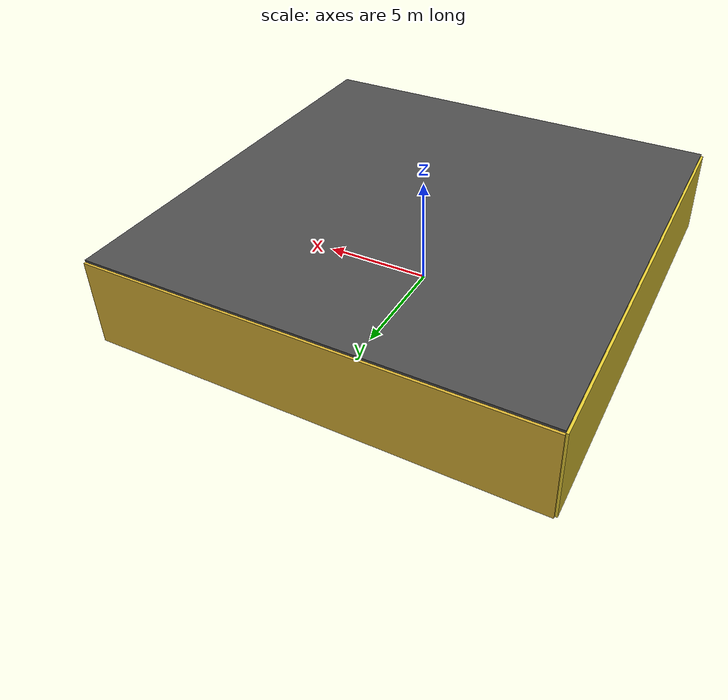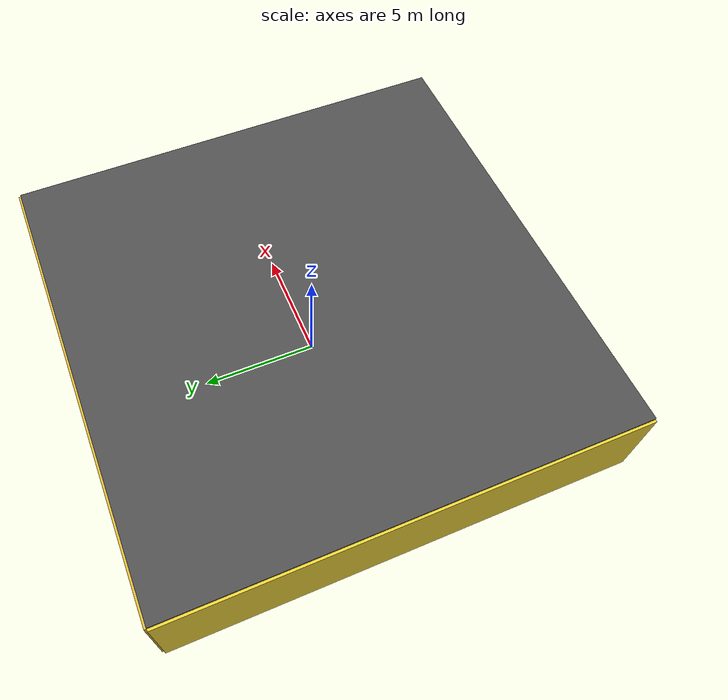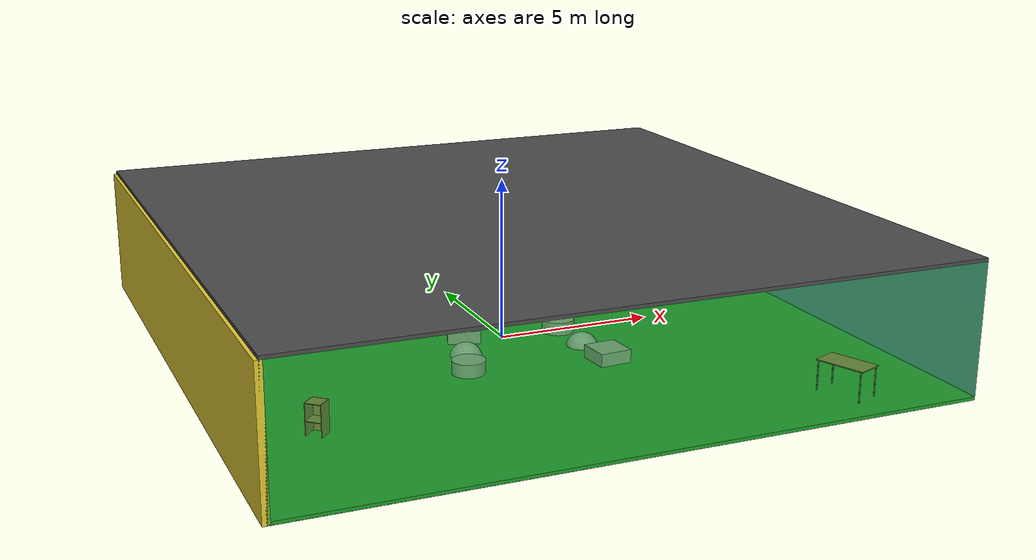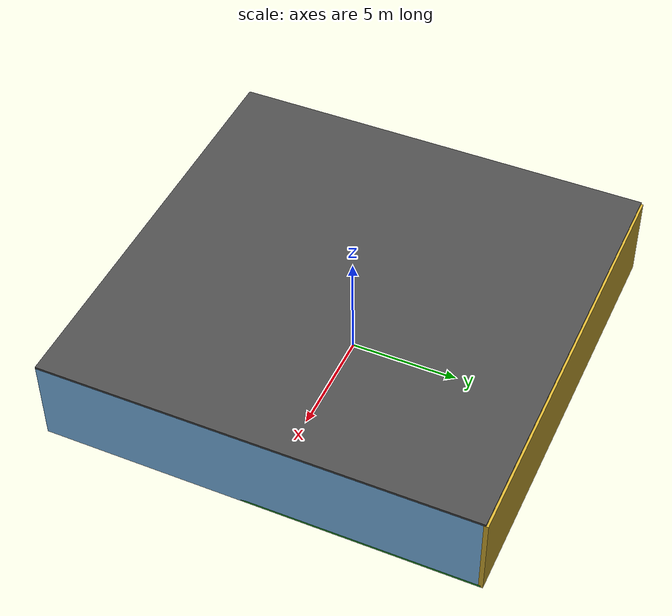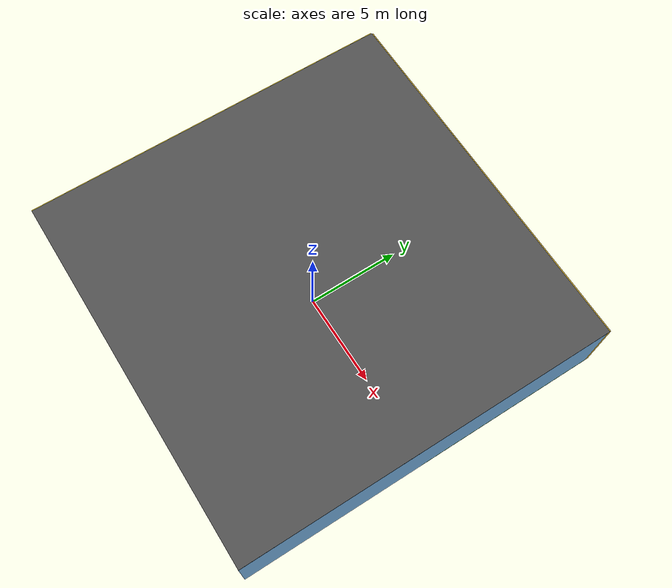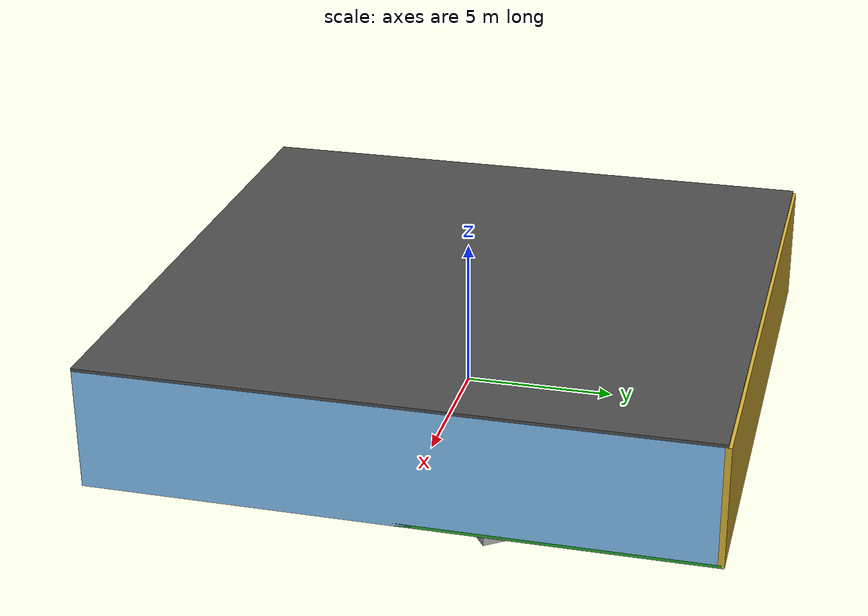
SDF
<sdf version="1.4">
 <world name="default">
  <physics type="ode">
   <max_step_size>0.001</max_step_size>
   <real_time_factor>1</real_time_factor>
   <real_time_update_rate>1000</real_time_update_rate>
   <gravity>0 0 -9.8</gravity>
  </physics>
  <scene><ambient>0.4 0.4 0.4 1</ambient><background>0.7 0.7 0.7 1</background><shadows>1</shadows></scene>
  <model name="Surrounding">
   <static>1</static>
   <link name="Ceiling">
    <collision name="Ceiling_Collision"><geometry><box><size>20 20 0.1</size></box></geometry></collision>
    <visual name="Ceiling_Visual">
     <geometry><box><size>20 20 0.1</size></box></geometry>
     <material>
      <script><uri>file://media/materials/scripts/gazebo.material</uri><name>Gazebo/Road</name></script>
     </material>
    </visual>
    <pose>0 0 4.05 0 0 0</pose>
   </link>
   <link name="Wall_South">
    <collision name="Wall_South_Collision">
     <geometry><box><size>20 0 4</size></box></geometry>
     <pose>0 0 2 0 -0 0</pose>
    </collision>
    <visual name="Wall_South_Visual">
     <pose>0 0 2 0 -0 0</pose>
     <geometry><box><size>20 0 4</size></box></geometry>
     <material>
      <script><uri>file://media/materials/scripts/gazebo.material</uri><name>Gazebo/GreenTransparent</name></script>
     </material>
    </visual>
    <velocity_decay><linear>0</linear><angular>0</angular></velocity_decay>
    <pose>0 -10 0 0 -0 0</pose>
   </link>
   <link name="Wall_East">
    <collision name="Wall_21_Collision">
     <geometry><box><size>20 0 4</size></box></geometry>
     <pose>0 0 2 0 -0 0</pose>
    </collision>
    <visual name="Wall_21_Visual">
     <pose>0 0 2 0 -0 0</pose>
     <geometry><box><size>20 0 4</size></box></geometry>
     <material>
      <script><uri>file://media/materials/scripts/gazebo.material</uri><name>Gazebo/SkyBlue</name></script>
     </material>
    </visual>
    <velocity_decay><linear>0</linear><angular>0</angular></velocity_decay>
    <pose>10 0 0 0 -0 1.5708</pose>
   </link>
   <link name="Wall_North">
    <collision name="Wall_22_Collision">
     <geometry><box><size>20 0.2 4</size></box></geometry>
     <pose>0 0 2 0 -0 0</pose>
    </collision>
    <visual name="Wall_22_Visual">
     <pose>0 0 2 0 -0 0</pose>
     <geometry><box><size>20 0.2 4</size></box></geometry>
     <material>
      <script><uri>file://media/materials/scripts/gazebo.material</uri><name>Gazebo/Gold</name></script>
     </material>
    </visual>
    <velocity_decay><linear>0</linear><angular>0</angular></velocity_decay>
    <pose>0 10 0 0 -0 0</pose>
   </link>
   <link name="Wall_West">
    <collision name="Wall_23_Collision">
     <geometry><box><size>20 0.2 4</size></box></geometry>
     <pose>0 0 2 0 -0 0</pose>
    </collision>
    <visual name="Wall_23_Visual">
     <pose>0 0 2 0 -0 0</pose>
     <geometry><box><size>20 0.2 4</size></box></geometry>
     <material>
      <script><uri>file://media/materials/scripts/gazebo.material</uri><name>Gazebo/ZincYellow</name></script>
     </material>
    </visual>
    <velocity_decay><linear>0</linear><angular>0</angular></velocity_decay>
    <pose>-10 0 0 0 0 -1.5708</pose>
   </link>
   <link name="Ground_link">
    <collision name="collision">
     <pose>0 0 .05 0 -0 0</pose>
     <geometry><box><size>20 20 0.1</size></box></geometry>
    </collision>
    <visual name="visual">
     <pose>0 0 .05 0 -0 0</pose>
     <geometry><box><size>20 20 0.1</size></box></geometry>
     <material>
      <script><uri>file://media/materials/scripts/gazebo.material</uri><name>Gazebo/GreenGlow</name></script>
     </material>
    </visual>
   </link>
   <static>1</static>
  </model>
  <spherical_coordinates>
   <surface_model>EARTH_WGS84</surface_model>
   <latitude_deg>0</latitude_deg>
   <longitude_deg>0</longitude_deg>
   <elevation>0</elevation>
   <heading_deg>0</heading_deg>
  </spherical_coordinates>
  <light name="lightball_0" type="diffuse">
   <diffuse>0.8 0.8 0.8 1</diffuse>
   <specular>0.2 0.2 0.2 1</specular>
   <attenuation>
    <range>100</range>
    <constant>0.7</constant>
    <linear>0.01</linear>
    <quadratic>0.001</quadratic>
   </attenuation>
   <direction>-0.5 0.1 -0.9</direction>
   <pose>1.64654126648 -4.97095996101 3.26268391927 0 0 0</pose>
  </light>
  <light name="lightball_1" type="diffuse">
   <diffuse>0.8 0.8 0.8 1</diffuse>
   <specular>0.2 0.2 0.2 1</specular>
   <attenuation>
    <range>100</range>
    <constant>0.7</constant>
    <linear>0.01</linear>
    <quadratic>0.001</quadratic>
   </attenuation>
   <direction>-0.5 0.1 -0.9</direction>
   <pose>-4.75649105726 8.92880937299 2.06393840786 0 0 0</pose>
  </light>
  <light name="lightball_2" type="diffuse">
   <diffuse>0.8 0.8 0.8 1</diffuse>
   <specular>0.2 0.2 0.2 1</specular>
   <attenuation>
    <range>100</range>
    <constant>0.7</constant>
    <linear>0.01</linear>
    <quadratic>0.001</quadratic>
   </attenuation>
   <direction>-0.5 0.1 -0.9</direction>
   <pose>-6.950514923 7.75031743876 1.87841834342 0 0 0</pose>
  </light>
  <light name="lightball_3" type="diffuse">
   <diffuse>0.8 0.8 0.8 1</diffuse>
   <specular>0.2 0.2 0.2 1</specular>
   <attenuation>
    <range>100</range>
    <constant>0.7</constant>
    <linear>0.01</linear>
    <quadratic>0.001</quadratic>
   </attenuation>
   <direction>-0.5 0.1 -0.9</direction>
   <pose>-3.69860085767 6.29519913394 1.17321567971 0 0 0</pose>
  </light>
  <light name="lightball_4" type="diffuse">
   <diffuse>0.8 0.8 0.8 1</diffuse>
   <specular>0.2 0.2 0.2 1</specular>
   <attenuation>
    <range>100</range>
    <constant>0.7</constant>
    <linear>0.01</linear>
    <quadratic>0.001</quadratic>
   </attenuation>
   <direction>-0.5 0.1 -0.9</direction>
   <pose>4.80292165811 1.8501659309 2.1534762529 0 0 0</pose>
  </light>
  <light name="lightball_5" type="diffuse">
   <diffuse>0.8 0.8 0.8 1</diffuse>
   <specular>0.2 0.2 0.2 1</specular>
   <attenuation>
    <range>100</range>
    <constant>0.7</constant>
    <linear>0.01</linear>
    <quadratic>0.001</quadratic>
   </attenuation>
   <direction>-0.5 0.1 -0.9</direction>
   <pose>-0.24560384267 -4.46352137277 3.15296087195 0 0 0</pose>
  </light>
  <include><uri>model://cabinet</uri><pose>-7.51923045127 -5.50919749766 0 0 0 0.819974077828</pose></include>
  <include>
   <uri>model://construction_cone</uri>
   <pose>-8.12677561522 2.27119549878 0 0 0 2.58851750423</pose>
  </include>
  <include>
   <uri>model://construction_cone</uri>
   <pose>-6.75737095191 5.36716883039 0 0 0 0.24355758734</pose>
  </include>
  <include><uri>model://cabinet</uri><pose>-8.2937482946 6.64682437296 0 0 0 1.95939710674</pose></include>
  <include>
   <uri>model://construction_cone</uri>
   <pose>-3.41983156058 1.42213634922 0 0 0 2.49357176749</pose>
  </include>
  <include>
   <uri>model://textured_shapes</uri>
   <pose>-1.75676588494 -1.38162759272 0 0 0 2.82042624555</pose>
  </include>
  <include>
   <uri>model://robocup_3Dsim_goal</uri>
   <pose>-1.32530060441 1.47071527184 0 0 0 0.523923011553</pose>
  </include>
  <include>
   <uri>model://robocup_3Dsim_goal</uri>
   <pose>-2.00483635851 7.67747858828 0 0 0 1.32788466248</pose>
  </include>
  <include>
   <uri>model://textured_shapes</uri>
   <pose>1.84762143159 -1.88878475817 0 0 0 0.0773447431265</pose>
  </include>
  <include><uri>model://cabinet</uri><pose>0.725682498615 2.20631310835 0 0 0 0.583091238681</pose></include>
  <include><uri>model://cabinet</uri><pose>2.36570763479 8.62125022628 0 0 0 0.608177993934</pose></include>
  <include><uri>model://table</uri><pose>6.85320594258 -8.36773064306 0 0 0 1.9495446652</pose></include>
  <include>
   <uri>model://textured_shapes</uri>
   <pose>7.73992477746 2.06031147332 0 0 0 2.19374180142</pose>
  </include>
 </world>
</sdf>

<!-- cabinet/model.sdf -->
<sdf version="1.5">
  <model name="cabinet">
    <static>true</static>
    <link name="cabinet_bottom_plate">
      <inertial>
        <pose>0 0 -1 0 0 0</pose>
        <inertia>
          <ixx>2.050000</ixx>
          <ixy>0</ixy>
          <ixz>0</ixz>
          <iyy>2.050000</iyy>
          <iyz>0</iyz>
          <izz>2.050000</izz>
        </inertia>
        <mass>25.000000</mass>
      </inertial>
      <collision name="cabinet_bottom_plate_geom">
        <pose>0 0 0.010000 0 0 0</pose>
        <geometry>
          <box>
            <size>0.450000 0.450000 0.020000</size>
          </box>
        </geometry>
      </collision>
      <visual name="cabinet_bottom_plate_geom_visual">
        <pose>0 0 0.010000 0 0 0</pose>
        <geometry>
          <box>
            <size>0.450000 0.450000 0.020000</size>
          </box>
        </geometry>
        <material>
          <script>
            <uri>model://media/materials/scripts/gazebo.material</uri>
            <name>Gazebo/Wood</name>
          </script>
        </material>
      </visual>
      <collision name="cabinet_bottom_plate_geom_cabinet_back_plate">
        <pose>0.235000 0 0.510000 0 0 0</pose>
        <geometry>
          <box>
            <size>0.020000 0.450000 1.020000</size>
          </box>
        </geometry>
      </collision>
      <visual name="cabinet_bottom_plate_geom_cabinet_back_plate_visual">
        <pose>0.235000 0 0.510000 0 0 0</pose>
        <geometry>
          <box>
            <size>0.020000 0.450000 1.020000</size>
          </box>
        </geometry>
        <material>
          <script>
            <uri>model://media/materials/scripts/gazebo.material</uri>
            <name>Gazebo/Wood</name>
          </script>
        </material>
      </visual>
      <collision name="cabinet_bottom_plate_geom_cabinet_left_plate">
        <pose>0 0.235000 0.510000 0 0 0</pose>
        <geometry>
          <box>
            <size>0.450000 0.020000 1.020000</size>
          </box>
        </geometry>
      </collision>
      <visual name="cabinet_bottom_plate_geom_cabinet_left_plate_visual">
        <pose>0 0.235000 0.510000 0 0 0</pose>
        <geometry>
          <box>
            <size>0.450000 0.020000 1.020000</size>
          </box>
        </geometry>
        <material>
          <script>
            <uri>model://media/materials/scripts/gazebo.material</uri>
            <name>Gazebo/Wood</name>
          </script>
        </material>
      </visual>
      <collision name="cabinet_bottom_plate_geom_cabinet_middle_plate">
        <pose>0 0 0.510000 0 0 0</pose>
        <geometry>
          <box>
            <size>0.450000 0.450000 0.020000</size>
          </box>
        </geometry>
      </collision>
      <visual name="cabinet_bottom_plate_geom_cabinet_middle_plate_visual">
        <pose>0 0 0.510000 0 0 0</pose>
        <geometry>
          <box>
            <size>0.450000 0.450000 0.020000</size>
          </box>
        </geometry>
        <material>
          <script>
            <uri>model://media/materials/scripts/gazebo.material</uri>
            <name>Gazebo/Wood</name>
          </script>
        </material>
      </visual>
      <collision name="cabinet_bottom_plate_geom_cabinet_right_plate">
        <pose>0 -0.235000 0.510000 0 0 0</pose>
        <geometry>
          <box>
            <size>0.450000 0.020000 1.020000</size>
          </box>
        </geometry>
      </collision>
      <visual name="cabinet_bottom_plate_geom_cabinet_right_plate_visual">
        <pose>0 -0.235000 0.510000 0 0 0</pose>
        <geometry>
          <box>
            <size>0.450000 0.020000 1.020000</size>
          </box>
        </geometry>
        <material>
          <script>
            <uri>model://media/materials/scripts/gazebo.material</uri>
            <name>Gazebo/Wood</name>
          </script>
        </material>
      </visual>
      <collision name="cabinet_bottom_plate_geom_cabinet_top_plate">
        <pose>0 0 1.010000 0 0 0</pose>
        <geometry>
          <box>
            <size>0.450000 0.450000 0.020000</size>
          </box>
        </geometry>
      </collision>
      <visual name="cabinet_bottom_plate_geom_cabinet_top_plate_visual">
        <pose>0 0 1.010000 0 0 0</pose>
        <geometry>
          <box>
            <size>0.450000 0.450000 0.020000</size>
          </box>
        </geometry>
        <material>
          <script>
            <uri>model://media/materials/scripts/gazebo.material</uri>
            <name>Gazebo/Wood</name>
          </script>
        </material>
      </visual>
    </link>
  </model>
</sdf>

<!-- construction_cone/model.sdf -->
<sdf version="1.5">
  <model name="Construction Cone">
    <link name="link">
      <collision name="collision">
        <geometry>
          <mesh>
            <scale>10 10 10</scale>
            <uri>file://isr-testbed/construction_cone/meshes/construction_cone.dae</uri>
          </mesh>
        </geometry>
      </collision>
      <visual name="visual">
        <geometry>
          <mesh>
            <scale>10 10 10</scale>
            <uri>file://isr-testbed/construction_cone/meshes/construction_cone.dae</uri>
          </mesh>
        </geometry>
      </visual>
    </link>
  </model>
</sdf>

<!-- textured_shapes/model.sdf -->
<sdf version="1.6">
  <model name="textured_shapes">
    <pose>0 0 0.5 0 0 0</pose>
    <link name="box">
      <pose>0 -1.5 0 0 0 0</pose>
      <collision name="collision">
        <geometry>
          <box>
            <size>1 1 1</size>
          </box>
        </geometry>
      </collision>
      <visual name="visual">
        <geometry>
          <box>
            <size>1 1 1</size>
          </box>
        </geometry>
        <material>
          <script>
            <uri>model://../model_source/models/textured_shapes/materials/scripts</uri>
            <uri>model://../model_source/models/textured_shapes/materials/textures</uri>
            <name>TexturedShape/Squares</name>
          </script>
        </material>
      </visual>
    </link>
    <link name="sphere">
      <collision name="collision">
        <geometry>
          <sphere>
            <radius>0.5</radius>
          </sphere>
        </geometry>
      </collision>
      <visual name="visual">
        <geometry>
          <sphere>
            <radius>0.5</radius>
          </sphere>
        </geometry>
        <material>
          <script>
            <uri>model://../model_source/models/textured_shapes/materials/scripts</uri>
            <uri>model://../model_source/models/textured_shapes/materials/textures</uri>
            <name>TexturedShape/Squares</name>
          </script>
        </material>
      </visual>
    </link>
    <link name="cylinder">
      <pose>0 1.5 0 0 0 0</pose>
      <collision name="collision">
        <geometry>
          <cylinder>
            <radius>0.5</radius>
            <length>1</length>
          </cylinder>
        </geometry>
      </collision>
      <visual name="visual">
        <geometry>
          <cylinder>
            <radius>0.5</radius>
            <length>1</length>
          </cylinder>
        </geometry>
        <material>
          <script>
            <uri>model://../model_source/models/textured_shapes/materials/scripts</uri>
            <uri>model://../model_source/models/textured_shapes/materials/textures</uri>
            <name>TexturedShape/Squares</name>
          </script>
        </material>
      </visual>
    </link>
  </model>
</sdf>

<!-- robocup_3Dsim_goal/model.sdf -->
<sdf version="1.5">
  <model name="robocup_3d_goal">
    <static>true</static>
    <link name="left_post">
      <pose>0 1.05 0.45 0 0 0</pose>
      <collision name="collision">
        <geometry>
          <cylinder>
            <radius>0.05</radius>
            <length>0.9</length>
          </cylinder>
        </geometry>
      </collision>
      <visual name="visual">
        <geometry>
          <cylinder>
            <radius>0.05</radius>
            <length>0.9</length>
          </cylinder>
        </geometry>
        <material>
          <script>
            <uri>file://media/materials/scripts/gazebo.material</uri>
            <name>Gazebo/ZincYellow</name>
          </script>
        </material>
      </visual>
    </link>
    <link name="left_support_horiz_lower">
      <pose>0.30 1.05 0.01 0 0 0</pose>
      <collision name="collision">
        <geometry>
          <box>
            <size>0.50 0.02 0.02</size>
          </box>
        </geometry>
      </collision>
      <visual name="visual">
        <geometry>
          <box>
            <size>0.50 0.02 0.02</size>
          </box>
        </geometry>
        <material>
          <script>
            <uri>file://media/materials/scripts/gazebo.material</uri>
            <name>Gazebo/White</name>
          </script>
        </material>
      </visual>
    </link>
    <link name="left_support_horiz_upper">
      <pose>0.30 1.05 0.79 0 0 0</pose>
      <collision name="collision">
        <geometry>
          <box>
            <size>0.50 0.02 0.02</size>
          </box>
        </geometry>
      </collision>
      <visual name="visual">
        <geometry>
          <box>
            <size>0.50 0.02 0.02</size>
          </box>
        </geometry>
        <material>
          <script>
            <uri>file://media/materials/scripts/gazebo.material</uri>
            <name>Gazebo/White</name>
          </script>
        </material>
      </visual>
    </link>
    <link name="left_support_vertical">
      <pose>0.56 1.05 0.4 0 1.5708 0</pose>
      <collision name="collision">
        <geometry>
          <box>
            <size>0.80 0.02 0.02</size>
          </box>
        </geometry>
      </collision>
      <visual name="visual">
        <geometry>
          <box>
            <size>0.80 0.02 0.02</size>
          </box>
        </geometry>
        <material>
          <script>
            <uri>file://media/materials/scripts/gazebo.material</uri>
            <name>Gazebo/White</name>
          </script>
        </material>
      </visual>
    </link>
    <link name="right_support_horiz_lower">
      <pose>0.30 -1.05 0.01 0 0 0</pose>
      <collision name="collision">
        <geometry>
          <box>
            <size>0.50 0.02 0.02</size>
          </box>
        </geometry>
      </collision>
      <visual name="visual">
        <geometry>
          <box>
            <size>0.50 0.02 0.02</size>
          </box>
        </geometry>
        <material>
          <script>
            <uri>file://media/materials/scripts/gazebo.material</uri>
            <name>Gazebo/White</name>
          </script>
        </material>
      </visual>
    </link>
    <link name="right_support_horiz_upper">
      <pose>0.30 -1.05 0.79 0 0 0</pose>
      <collision name="collision">
        <geometry>
          <box>
            <size>0.50 0.02 0.02</size>
          </box>
        </geometry>
      </collision>
      <visual name="visual">
        <geometry>
          <box>
            <size>0.50 0.02 0.02</size>
          </box>
        </geometry>
        <material>
          <script>
            <uri>file://media/materials/scripts/gazebo.material</uri>
            <name>Gazebo/White</name>
          </script>
        </material>
      </visual>
    </link>
    <link name="right_support_vertical">
      <pose>0.56 -1.05 0.4 0 1.5708 0</pose>
      <collision name="collision">
        <geometry>
          <box>
            <size>0.80 0.02 0.02</size>
          </box>
        </geometry>
      </collision>
      <visual name="visual">
        <geometry>
          <box>
            <size>0.80 0.02 0.02</size>
          </box>
        </geometry>
        <material>
          <script>
            <uri>file://media/materials/scripts/gazebo.material</uri>
            <name>Gazebo/White</name>
          </script>
        </material>
      </visual>
    </link>
    <link name="center_support_horiz_lower">
      <pose>0.56 0 0.01 0 1.5708 0</pose>
      <collision name="collision">
        <geometry>
          <box>
            <size>0.02 2.08 0.02</size>
          </box>
        </geometry>
      </collision>
      <visual name="visual">
        <geometry>
          <box>
            <size>0.02 2.08 0.02</size>
          </box>
        </geometry>
        <material>
          <script>
            <uri>file://media/materials/scripts/gazebo.material</uri>
            <name>Gazebo/White</name>
          </script>
        </material>
      </visual>
    </link>
    <link name="center_support_horiz_upper">
      <pose>0.56 0 0.79 0 1.5708 0</pose>
      <collision name="collision">
        <geometry>
          <box>
            <size>0.02 2.08 0.02</size>
          </box>
        </geometry>
      </collision>
      <visual name="visual">
        <geometry>
          <box>
            <size>0.02 2.08 0.02</size>
          </box>
        </geometry>
        <material>
          <script>
            <uri>file://media/materials/scripts/gazebo.material</uri>
            <name>Gazebo/White</name>
          </script>
        </material>
      </visual>
    </link>
    <link name="right_post">
      <pose>0 -1.05 0.45 0 0 0</pose>
      <collision name="collision">
        <geometry>
          <cylinder>
            <radius>0.05</radius>
            <length>0.9</length>
          </cylinder>
        </geometry>
      </collision>
      <visual name="visual">
        <geometry>
          <cylinder>
            <radius>0.05</radius>
            <length>0.9</length>
          </cylinder>
        </geometry>
        <material>
          <script>
            <uri>file://media/materials/scripts/gazebo.material</uri>
            <name>Gazebo/ZincYellow</name>
          </script>
        </material>
      </visual>
    </link>
    <link name="crossbar">
      <pose>0 0 0.85 1.57 1.57 0</pose>
      <collision name="collision">
        <geometry>
          <cylinder>
            <radius>0.05</radius>
            <length>2.0</length>
          </cylinder>
        </geometry>
      </collision>
      <visual name="visual">
        <geometry>
          <cylinder>
            <radius>0.05</radius>
            <length>2.0</length>
          </cylinder>
        </geometry>
        <material>
          <script>
            <uri>file://media/materials/scripts/gazebo.material</uri>
            <name>Gazebo/ZincYellow</name>
          </script>
        </material>
      </visual>
    </link>
    <link name="center_net">
      <pose>0.56 0 0.40 0 0 0</pose>
      <collision name="collision">
        <geometry>
          <box>
            <size>0.01 2.1 0.80</size>
          </box>
        </geometry>
      </collision>
      <visual name="visual">
        <geometry>
          <box>
            <size>0.01 2.1 0.80</size>
          </box>
        </geometry>
        <material>
          <script>
            <uri>model://../model_source/models/robocup09_spl_field/materials/scripts/</uri>
            <uri>model://../model_source/models/robocup09_spl_field/materials/textures/</uri>
            <name>RoboCup/Net</name>
          </script>
        </material>
      </visual>
    </link>
    <link name="left_net">
      <pose>0.30 1.05 0.40 0 0 0</pose>
      <collision name="collision">
        <geometry>
          <box>
            <size>0.50 0.01 0.76</size>
          </box>
        </geometry>
      </collision>
      <visual name="visual">
        <geometry>
          <box>
            <size>0.50 0.01 0.76</size>
          </box>
        </geometry>
        <material>
          <script>
            <uri>model://../model_source/models/robocup09_spl_field/materials/scripts/</uri>
            <uri>model://../model_source/models/robocup09_spl_field/materials/textures/</uri>
            <name>RoboCup/Net</name>
          </script>
        </material>
      </visual>
    </link>
    <link name="right_net">
      <pose>0.30 -1.05 0.40 0 0 0</pose>
      <collision name="collision">
        <geometry>
          <box>
            <size>0.50 0.01 0.76</size>
          </box>
        </geometry>
      </collision>
      <visual name="visual">
        <geometry>
          <box>
            <size>0.50 0.01 0.76</size>
          </box>
        </geometry>
        <material>
          <script>
            <uri>model://../model_source/models/robocup09_spl_field/materials/scripts/</uri>
            <uri>model://../model_source/models/robocup09_spl_field/materials/textures/</uri>
            <name>RoboCup/Net</name>
          </script>
        </material>
      </visual>
    </link>
  </model>
</sdf>

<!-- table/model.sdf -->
<sdf version="1.5">
  <model name="table">
    <static>true</static>
    <link name="link">
      <collision name="surface">
        <pose>0 0 1.0 0 0 0</pose>
        <geometry>
          <box>
            <size>1.5 0.8 0.03</size>
          </box>
        </geometry>
        <surface>
          <friction>
            <ode>
              <mu>0.6</mu>
              <mu2>0.6</mu2>
            </ode>
          </friction>
        </surface>
      </collision>
      <visual name="visual1">
        <pose>0 0 1.0 0 0 0</pose>
        <geometry>
          <box>
            <size>1.5 0.8 0.03</size>
          </box>
        </geometry>
        <material>
          <script>
            <uri>model://media/materials/scripts/gazebo.material</uri>
            <name>Gazebo/Wood</name>
          </script>
        </material>
      </visual>
      <collision name="front_left_leg">
        <pose>0.68 0.38 0.5 0 0 0</pose>
        <geometry>
          <cylinder>
            <radius>0.02</radius>
            <length>1.0</length>
          </cylinder>
        </geometry>
      </collision>
      <visual name="front_left_leg">
        <pose>0.68 0.38 0.5 0 0 0</pose>
        <geometry>
          <cylinder>
            <radius>0.02</radius>
            <length>1.0</length>
          </cylinder>
        </geometry>
        <material>
          <script>
            <uri>model://media/materials/scripts/gazebo.material</uri>
            <name>Gazebo/Grey</name>
          </script>
        </material>
      </visual>
      <collision name="front_right_leg">
        <pose>0.68 -0.38 0.5 0 0 0</pose>
        <geometry>
          <cylinder>
            <radius>0.02</radius>
            <length>1.0</length>
          </cylinder>
        </geometry>
      </collision>
      <visual name="front_right_leg">
        <pose>0.68 -0.38 0.5 0 0 0</pose>
        <geometry>
          <cylinder>
            <radius>0.02</radius>
            <length>1.0</length>
          </cylinder>
        </geometry>
        <material>
          <script>
            <uri>model://media/materials/scripts/gazebo.material</uri>
            <name>Gazebo/Grey</name>
          </script>
        </material>
      </visual>
      <collision name="back_right_leg">
        <pose>-0.68 -0.38 0.5 0 0 0</pose>
        <geometry>
          <cylinder>
            <radius>0.02</radius>
            <length>1.0</length>
          </cylinder>
        </geometry>
      </collision>
      <visual name="back_right_leg">
        <pose>-0.68 -0.38 0.5 0 0 0</pose>
        <geometry>
          <cylinder>
            <radius>0.02</radius>
            <length>1.0</length>
          </cylinder>
        </geometry>
        <material>
          <script>
            <uri>model://media/materials/scripts/gazebo.material</uri>
            <name>Gazebo/Grey</name>
          </script>
        </material>
      </visual>
      <collision name="back_left_leg">
        <pose>-0.68 0.38 0.5 0 0 0</pose>
        <geometry>
          <cylinder>
            <radius>0.02</radius>
            <length>1.0</length>
          </cylinder>
        </geometry>
      </collision>
      <visual name="back_left_leg">
        <pose>-0.68 0.38 0.5 0 0 0</pose>
        <geometry>
          <cylinder>
            <radius>0.02</radius>
            <length>1.0</length>
          </cylinder>
        </geometry>
        <material>
          <script>
            <uri>model://media/materials/scripts/gazebo.material</uri>
            <name>Gazebo/Grey</name>
          </script>
        </material>
      </visual>
    </link>
  </model>
</sdf>
